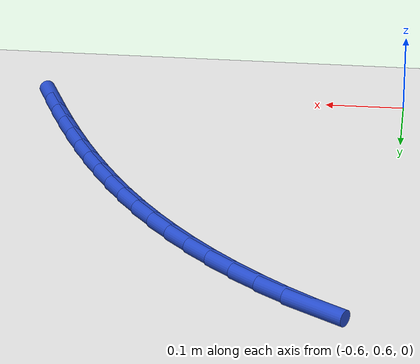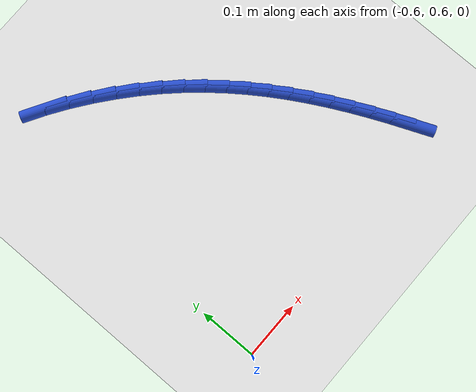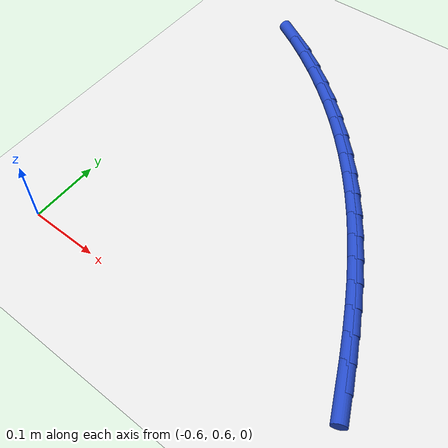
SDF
<sdf version="1.6">
 <world name="default">
  <model name="ground_plane">
   <static>1</static>
   <link name="link">
    <collision name="collision">
     <geometry><plane><normal>0 0 1</normal><size>100 100</size></plane></geometry>
     <surface><friction><ode><mu>100</mu><mu2>50</mu2></ode></friction></surface>
    </collision>
    <visual name="visual">
     <cast_shadows>0</cast_shadows>
     <geometry><plane><normal>0 0 1</normal><size>100 100</size></plane></geometry>
     <material>
      <script><uri>file://media/materials/scripts/gazebo.material</uri><name>Gazebo/WhiteGlow</name></script>
     </material>
    </visual>
   </link>
  </model>
  <model name="line">
   <link name="link_19">
    <pose>-0.15200274367134567 0.6433616557033945 0.01 0 1.57 -1.1722337781413403</pose>
    <collision name="collision">
     <geometry><cylinder><radius>0.01</radius><length>0.08</length></cylinder></geometry>
    </collision>
    <visual name="visual">
     <material>
      <script><name>Gazebo/Blue</name><uri>file://media/materials/scripts/gazebo.material</uri></script>
     </material>
     <geometry><cylinder><radius>0.01</radius><length>0.08</length></cylinder></geometry>
    </visual>
   </link>
   <link name="link_20">
    <pose>-0.16532843112144646 0.6750066149861964 0.01 0 1.57 -1.1510851897197338</pose>
    <collision name="collision">
     <geometry><cylinder><radius>0.01</radius><length>0.08</length></cylinder></geometry>
    </collision>
    <visual name="visual">
     <material>
      <script><name>Gazebo/Blue</name><uri>file://media/materials/scripts/gazebo.material</uri></script>
     </material>
     <geometry><cylinder><radius>0.01</radius><length>0.08</length></cylinder></geometry>
    </visual>
   </link>
   <link name="link_21">
    <pose>-0.1792527729951927 0.7062112917625619 0.01 0 1.57 -1.1286717989246011</pose>
    <collision name="collision">
     <geometry><cylinder><radius>0.01</radius><length>0.08</length></cylinder></geometry>
    </collision>
    <visual name="visual">
     <material>
      <script><name>Gazebo/Blue</name><uri>file://media/materials/scripts/gazebo.material</uri></script>
     </material>
     <geometry><cylinder><radius>0.01</radius><length>0.08</length></cylinder></geometry>
    </visual>
   </link>
   <link name="link_22">
    <pose>-0.19380096820769038 0.7369439811848413 0.01 0 1.57 -1.103786442105796</pose>
    <collision name="collision">
     <geometry><cylinder><radius>0.01</radius><length>0.08</length></cylinder></geometry>
    </collision>
    <visual name="visual">
     <material>
      <script><name>Gazebo/Blue</name><uri>file://media/materials/scripts/gazebo.material</uri></script>
     </material>
     <geometry><cylinder><radius>0.01</radius><length>0.08</length></cylinder></geometry>
    </visual>
   </link>
   <link name="link_23">
    <pose>-0.2090493108435047 0.7671860321398195 0.01 0 1.57 -1.0757743835521465</pose>
    <collision name="collision">
     <geometry><cylinder><radius>0.01</radius><length>0.08</length></cylinder></geometry>
    </collision>
    <visual name="visual">
     <material>
      <script><name>Gazebo/Blue</name><uri>file://media/materials/scripts/gazebo.material</uri></script>
     </material>
     <geometry><cylinder><radius>0.01</radius><length>0.08</length></cylinder></geometry>
    </visual>
   </link>
   <link name="link_24">
    <pose>-0.22510498805990636 0.7969266860405463 0.01 0 1.57 -1.0447509270802702</pose>
    <collision name="collision">
     <geometry><cylinder><radius>0.01</radius><length>0.08</length></cylinder></geometry>
    </collision>
    <visual name="visual">
     <material>
      <script><name>Gazebo/Blue</name><uri>file://media/materials/scripts/gazebo.material</uri></script>
     </material>
     <geometry><cylinder><radius>0.01</radius><length>0.08</length></cylinder></geometry>
    </visual>
   </link>
   <link name="link_25">
    <pose>-0.24207561634802352 0.8261552939857869 0.01 0 1.57 -1.0108954349804724</pose>
    <collision name="collision">
     <geometry><cylinder><radius>0.01</radius><length>0.08</length></cylinder></geometry>
    </collision>
    <visual name="visual">
     <material>
      <script><name>Gazebo/Blue</name><uri>file://media/materials/scripts/gazebo.material</uri></script>
     </material>
     <geometry><cylinder><radius>0.01</radius><length>0.08</length></cylinder></geometry>
    </visual>
   </link>
   <link name="link_26">
    <pose>-0.2600688121989844 0.8548612070743049 0.01 0 1.57 -0.9744445872556786</pose>
    <collision name="collision">
     <geometry><cylinder><radius>0.01</radius><length>0.08</length></cylinder></geometry>
    </collision>
    <visual name="visual">
     <material>
      <script><name>Gazebo/Blue</name><uri>file://media/materials/scripts/gazebo.material</uri></script>
     </material>
     <geometry><cylinder><radius>0.01</radius><length>0.08</length></cylinder></geometry>
    </visual>
   </link>
   <link name="link_27">
    <pose>-0.27919219210391727 0.8830337764048655 0.01 0 1.57 -0.935692609687109</pose>
    <collision name="collision">
     <geometry><cylinder><radius>0.01</radius><length>0.08</length></cylinder></geometry>
    </collision>
    <visual name="visual">
     <material>
      <script><name>Gazebo/Blue</name><uri>file://media/materials/scripts/gazebo.material</uri></script>
     </material>
     <geometry><cylinder><radius>0.01</radius><length>0.08</length></cylinder></geometry>
    </visual>
   </link>
   <link name="link_28">
    <pose>-0.29955337255395004 0.9106623530762327 0.01 0 1.57 -0.8949876478548601</pose>
    <collision name="collision">
     <geometry><cylinder><radius>0.01</radius><length>0.08</length></cylinder></geometry>
    </collision>
    <visual name="visual">
     <material>
      <script><name>Gazebo/Blue</name><uri>file://media/materials/scripts/gazebo.material</uri></script>
     </material>
     <geometry><cylinder><radius>0.01</radius><length>0.08</length></cylinder></geometry>
    </visual>
   </link>
   <link name="link_29">
    <pose>-0.3212599700402111 0.9377362881871713 0.01 0 1.57 -0.8527238754158645</pose>
    <collision name="collision">
     <geometry><cylinder><radius>0.01</radius><length>0.08</length></cylinder></geometry>
    </collision>
    <visual name="visual">
     <material>
      <script><name>Gazebo/Blue</name><uri>file://media/materials/scripts/gazebo.material</uri></script>
     </material>
     <geometry><cylinder><radius>0.01</radius><length>0.08</length></cylinder></geometry>
    </visual>
   </link>
   <link name="link_30">
    <pose>-0.3444196010538286 0.9642449328364454 0.01 0 1.57 -0.8093294827232611</pose>
    <collision name="collision">
     <geometry><cylinder><radius>0.01</radius><length>0.08</length></cylinder></geometry>
    </collision>
    <visual name="visual">
     <material>
      <script><name>Gazebo/Blue</name><uri>file://media/materials/scripts/gazebo.material</uri></script>
     </material>
     <geometry><cylinder><radius>0.01</radius><length>0.08</length></cylinder></geometry>
    </visual>
   </link>
   <link name="link_31">
    <pose>-0.36913988208593057 0.9901776381228198 0.01 0 1.57 -0.7652513336959319</pose>
    <collision name="collision">
     <geometry><cylinder><radius>0.01</radius><length>0.08</length></cylinder></geometry>
    </collision>
    <visual name="visual">
     <material>
      <script><name>Gazebo/Blue</name><uri>file://media/materials/scripts/gazebo.material</uri></script>
     </material>
     <geometry><cylinder><radius>0.01</radius><length>0.08</length></cylinder></geometry>
    </visual>
   </link>
   <link name="link_32">
    <pose>-0.39552842962764534 1.0155237551450589 0.01 0 1.57 -0.7209376593597855</pose>
    <collision name="collision">
     <geometry><cylinder><radius>0.01</radius><length>0.08</length></cylinder></geometry>
    </collision>
    <visual name="visual">
     <material>
      <script><name>Gazebo/Blue</name><uri>file://media/materials/scripts/gazebo.material</uri></script>
     </material>
     <geometry><cylinder><radius>0.01</radius><length>0.08</length></cylinder></geometry>
    </visual>
   </link>
   <link name="link_33">
    <pose>-0.423692860170101 1.040272635001927 0.01 0 1.57 -0.6768205229973143</pose>
    <collision name="collision">
     <geometry><cylinder><radius>0.01</radius><length>0.08</length></cylinder></geometry>
    </collision>
    <visual name="visual">
     <material>
      <script><name>Gazebo/Blue</name><uri>file://media/materials/scripts/gazebo.material</uri></script>
     </material>
     <geometry><cylinder><radius>0.01</radius><length>0.08</length></cylinder></geometry>
    </visual>
   </link>
   <link name="link_34">
    <pose>-0.45374079020442576 1.064413628792189 0.01 0 1.57 -0.6328383945299714</pose>
    <collision name="collision">
     <geometry><cylinder><radius>0.01</radius><length>0.08</length></cylinder></geometry>
    </collision>
    <visual name="visual">
     <material>
      <script><name>Gazebo/Blue</name><uri>file://media/materials/scripts/gazebo.material</uri></script>
     </material>
     <geometry><cylinder><radius>0.01</radius><length>0.08</length></cylinder></geometry>
    </visual>
   </link>
   <link name="link_35">
    <pose>-0.4857378928849913 1.0878825777732137 0.01 0 1.57 -0.5850253377321937</pose>
    <collision name="collision">
     <geometry><cylinder><radius>0.01</radius><length>0.08</length></cylinder></geometry>
    </collision>
    <visual name="visual">
     <material>
      <script><name>Gazebo/Blue</name><uri>file://media/materials/scripts/gazebo.material</uri></script>
     </material>
     <geometry><cylinder><radius>0.01</radius><length>0.08</length></cylinder></geometry>
    </visual>
   </link>
   <link name="link_36">
    <pose>-0.5194171135733677 1.1101908407267875 0.01 0 1.57 -0.5297281601589839</pose>
    <collision name="collision">
     <geometry><cylinder><radius>0.01</radius><length>0.08</length></cylinder></geometry>
    </collision>
    <visual name="visual">
     <material>
      <script><name>Gazebo/Blue</name><uri>file://media/materials/scripts/gazebo.material</uri></script>
     </material>
     <geometry><cylinder><radius>0.01</radius><length>0.08</length></cylinder></geometry>
    </visual>
   </link>
  </model>
 </world>
</sdf>
